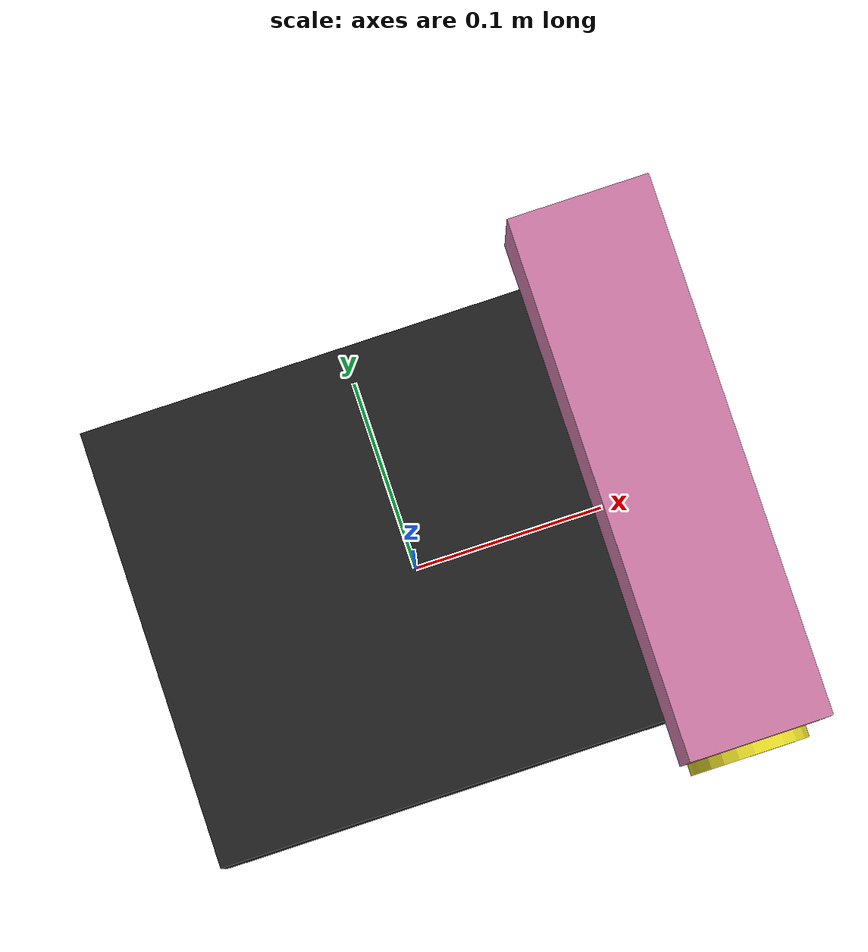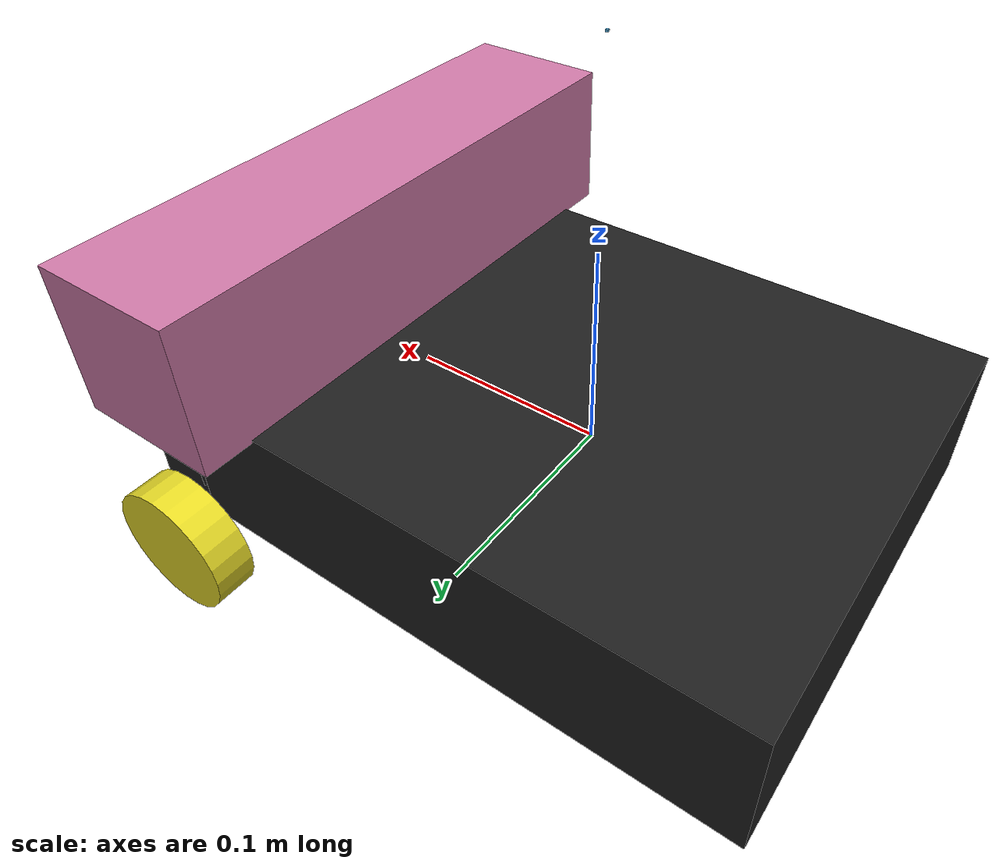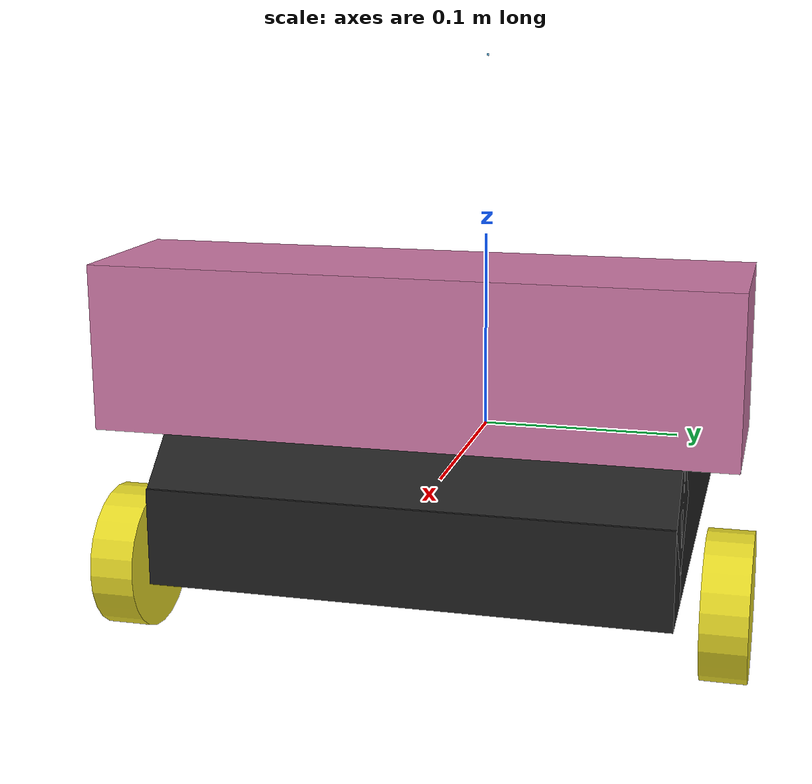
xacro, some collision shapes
<?xml version='1.0'?>

<robot name="myrobot" xmlns:xacro="http://www.ros.org/wiki/xacro">

  <xacro:include filename="$(find mybot_description)/urdf/mybot.gazebo" />
  <xacro:include filename="$(find mybot_description)/urdf/materials.xacro" />
  <xacro:include filename="$(find mybot_description)/urdf/macros.xacro" />

  <link name='chassis'>
    <pose>0 0 0 0 0 0</pose>

    <inertial>
      <mass value="3"/>
      <origin xyz="0 0 0" rpy=" 0 0 0"/>
	  <box_inertia m="3" x="0.3" y="0.23" z="0.07"/>
    </inertial>

    <collision name='collision'>
      <geometry>
        <box size=".28 .23 .07"/>
      </geometry>
    </collision>

    <visual name='chassis_visual'>
      <origin xyz="0 0 0" rpy=" 0 0 0"/>
      <geometry>
        <box size=".28 .23 .07"/>
      </geometry>
    </visual>

    <collision name='collision'>
      <geometry>
        <box size=".03 .23 .044"/>
      </geometry>
    </collision>

    <visual name='chassis_visual'>
      <origin xyz="0.155 0 -0.013" rpy=" 0 0 0"/>
      <geometry>
        <box size=".03 .23 .044"/>
      </geometry>
    </visual>

    <collision name='collision'>
      <geometry>
        <box size=".04 .23 .04"/>
      </geometry>
    </collision>

    <visual name='chassis_visual'>
      <origin xyz="0.1415 0 .007" rpy="0 0.754 0"/>
      <geometry>
        <box size=".04 .23 .04"/>
      </geometry>
    </visual>

    <collision name='caster_collision1'>
      <origin xyz="-0.1075 0.07 -0.035" rpy=" 0 0 0"/>
      <geometry>
        <sphere radius="0.0325"/>
      </geometry>
      <surface>
        <friction>
          <ode>
            <mu>0</mu>
            <mu2>0</mu2>
            <slip1>1.0</slip1>
            <slip2>1.0</slip2>
          </ode>
        </friction>
      </surface>
    </collision>

    <visual name='caster_visua1'>
      <origin xyz="-0.1075 0.07 -0.035" rpy=" 0 0 0"/>
      <geometry>
        <sphere radius="0.0325"/>
      </geometry>
      <inertial>
		  <mass value="1"/>
      </inertial>
    </visual>

    <collision name='caster_collision2'>
      <origin xyz="-0.1075 -0.07 -0.035" rpy=" 0 0 0"/>
      <geometry>
        <sphere radius="0.0325"/>
      </geometry>
      <surface>
        <friction>
          <ode>
            <mu>0</mu>
            <mu2>0</mu2>
            <slip1>1.0</slip1>
            <slip2>1.0</slip2>
          </ode>
        </friction>
      </surface>
    </collision>

    <visual name='caster_visua2'>
      <origin xyz="-0.1075 -0.07 -0.035" rpy=" 0 0 0"/>
      <geometry>
        <sphere radius="0.0325"/>
      </geometry>
      <inertial>
		  <mass value="1"/>
      </inertial>
    </visual>
  </link>

<link name="imu_link">
  <inertial>
    <mass value="0.001"/>
    <origin rpy="0 0 0" xyz="0 0 0"/>
    <inertia ixx="0.0001" ixy="0" ixz="0" iyy="0.000001" iyz="0" izz="0.0001"/>
  </inertial>
  <visual>
    <origin rpy="0 0 0" xyz="0 0 0"/>
    <geometry>
      <box size="0.001 0.001 0.001"/>
    </geometry>
  </visual>
  <collision>
    <origin rpy="0 0 0" xyz="0 0 0"/>
    <geometry>
      <box size=".001 .001 .001"/>
    </geometry>
  </collision>
</link>

  <link name="left_wheel">
    <!--origin xyz="0.1 0.13 0.1" rpy="0 1.5707 1.5707"/-->
    <collision name="collision">
      <origin xyz="0 0 0" rpy="0 1.5707 1.5707"/>
      <geometry>
        <cylinder radius=".0325" length=".02"/>
      </geometry>
    </collision>
    <visual name="left_wheel_visual">
      <origin xyz="0 0 0" rpy="0 1.5707 1.5707"/>
      <geometry>
        <cylinder radius=".0325" length=".02"/>
      </geometry>
    </visual>
    <inertial>
      <origin xyz="0 0 0" rpy="0 1.5707 1.5707"/>
      <mass value="1"/>
      <cylinder_inertia m="1" r="0.0325" h="0.02"/>
    </inertial>
  </link>

  <link name="right_wheel">
    <!--origin xyz="0.1 -0.13 0.1" rpy="0 1.5707 1.5707"/-->
    <collision name="collision">
      <origin xyz="0 0 0" rpy="0 1.5707 1.5707"/>
      <geometry>
        <cylinder radius=".0325" length=".02"/>
      </geometry>
    </collision>
    <visual name="right_wheel_visual">
      <origin xyz="0 0 0" rpy="0 1.5707 1.5707"/>
      <geometry>
        <cylinder radius=".0325" length=".02"/>
      </geometry>
    </visual>
    <inertial>
      <origin xyz="0 0 0" rpy="0 1.5707 1.5707"/>
      <mass value="1"/>
      <cylinder_inertia m="1" r="0.0325" h="0.02"/>
    </inertial>
  </link>

  <joint name="imu_joint" type="fixed">
    <axis xyz="1 0 0"/>
    <origin xyz="0 0 0.19"/>
    <parent link="chassis"/>
    <child link="imu_link"/>
  </joint>

  <joint type="continuous" name="left_wheel_hinge">
    <origin xyz="0.135 0.135 -0.035" rpy="0 0 0"/>
    <child link="left_wheel"/>
    <parent link="chassis"/>
    <axis xyz="0 1 0" rpy="0 0 0"/>
    <limit effort="100" velocity="100"/>
    <!-- joint_properties damping="0.0" friction="10"/-->
  </joint>

  <joint type="continuous" name="right_wheel_hinge">
    <origin xyz="0.135 -0.135 -0.035" rpy="0 0 0"/>
    <child link="right_wheel"/>
    <parent link="chassis"/>
    <axis xyz="0 1 0" rpy="0 0 0"/>
    <limit effort="100" velocity="100"/>
    <!-- joint_properties damping="0.0" friction="10"/-->
  </joint>

    <joint name="camera_rgb_joint" type="fixed">
      <origin xyz="0.13 0 0.07" rpy="0 0 0"/>
      <parent link="chassis"/>
      <child link="camera_link" />
    </joint>
    <link name="camera_rgb_frame"/>

    <joint name="camera_rgb_optical_joint" type="fixed">
      <origin xyz="0 0 0" rpy="-1.570 0 -1.570" />
      <parent link="camera_rgb_frame" />
      <child link="camera_rgb_optical_frame" />
    </joint>
    <link name="camera_rgb_optical_frame"/>

    <joint name="camera_joint" type="fixed">
      <origin xyz="-0.031 -0.0125 -0.016" rpy="0 0 0"/>
      <child link="camera_rgb_frame"/>
      <parent link="camera_link"/>
    </joint>

      <link name="camera_link">
      <visual>
       <origin xyz="0 0 0" rpy="0 0 1.570"/>
        <geometry>
         <mesh filename="package://openni_description/mesh/kinect.dae"/>
        </geometry>
      </visual>
  	  <collision>
        <origin xyz="0.0 0.0 0.0" rpy="0 0 0"/>
  	    <geometry>
  	      <box size="0.07271 0.27794 0.073"/>
  	    </geometry>
  	  </collision>
      <inertial>
        <mass value="0.564" />
        <origin xyz="0 0 0" />
        <inertia ixx="0.003881243" ixy="0.0" ixz="0.0"
                 iyy="0.000498940" iyz="0.0"
                 izz="0.003879257" />
      </inertial>
    </link>

	<joint name="camera_depth_joint" type="fixed">
	  <origin xyz="0 0 0" rpy="0 0 0" />
	  <parent link="camera_rgb_frame" />
	  <child link="camera_depth_frame" />
	</joint>
	<link name="camera_depth_frame"/>

	<joint name="camera_depth_optical_joint" type="fixed">
	  <origin xyz="0 0 0" rpy="-1.570 0 -1.570" />
	  <parent link="camera_depth_frame" />
	  <child link="camera_depth_optical_frame" />
	</joint>
	<link name="camera_depth_optical_frame"/>
</robot>

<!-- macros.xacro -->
<robot>
  <macro name="cylinder_inertia" params="m r h">
    <inertia
      ixx="${m*(3*r*r+h*h)/12}" ixy = "0" ixz = "0"
      iyy="${m*(3*r*r+h*h)/12}" iyz = "0"
      izz="${m*r*r/2}"
    />
  </macro>

  <macro name="box_inertia" params="m x y z">
    <inertia
      ixx="${m*(y*y+z*z)/12}" ixy = "0" ixz = "0"
      iyy="${m*(x*x+z*z)/12}" iyz = "0"
      izz="${m*(x*x+z*z)/12}"
    />
  </macro>

  <macro name="sphere_inertia" params="m r">
    <inertia
      ixx="${2*m*r*r/5}" ixy = "0" ixz = "0"
      iyy="${2*m*r*r/5}" iyz = "0"
      izz="${2*m*r*r/5}"
    />
  </macro>

</robot>
